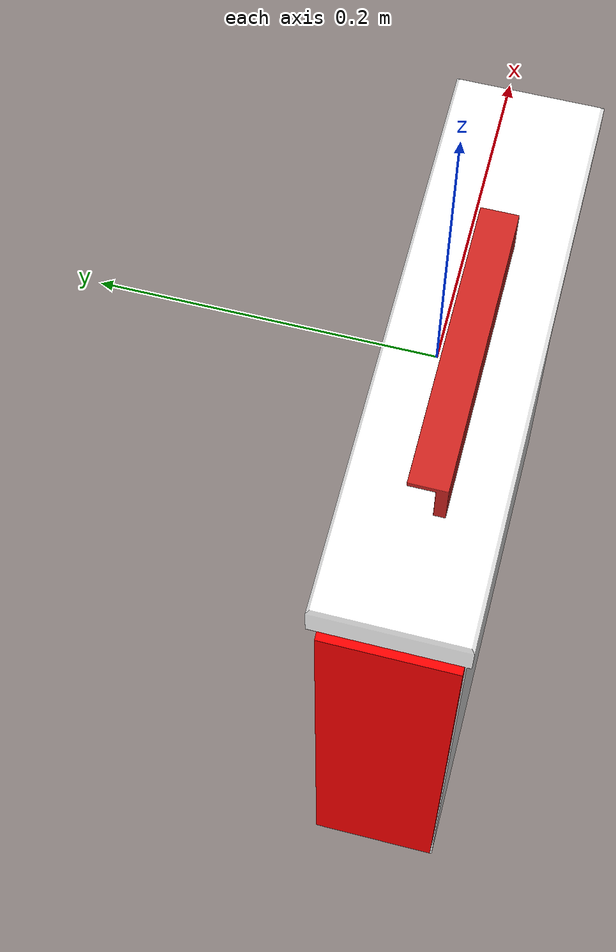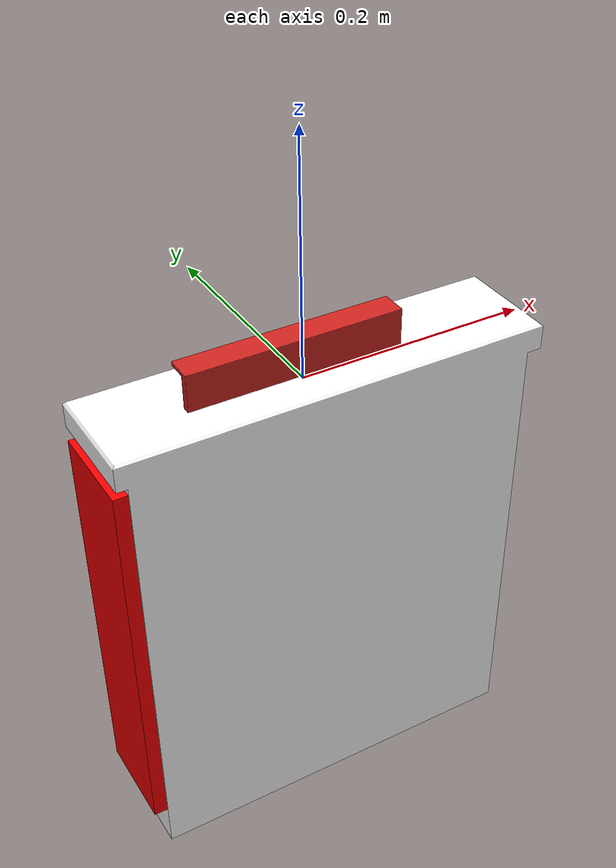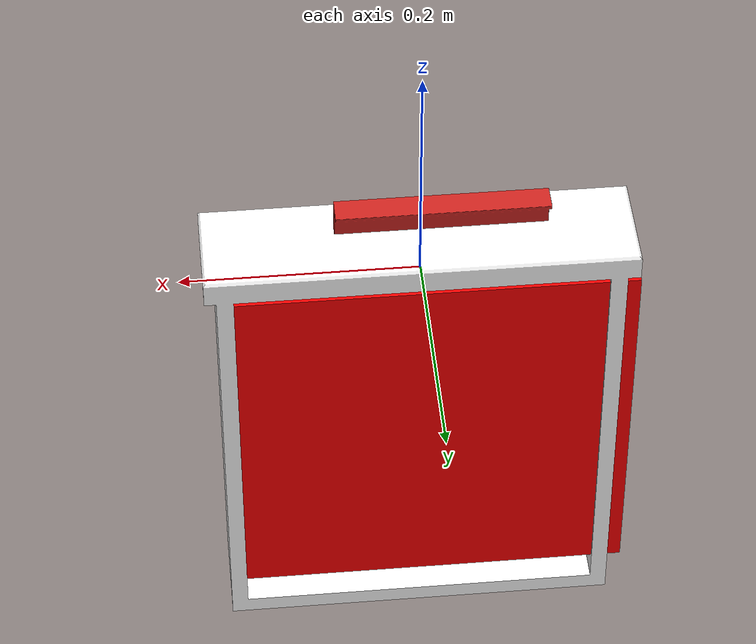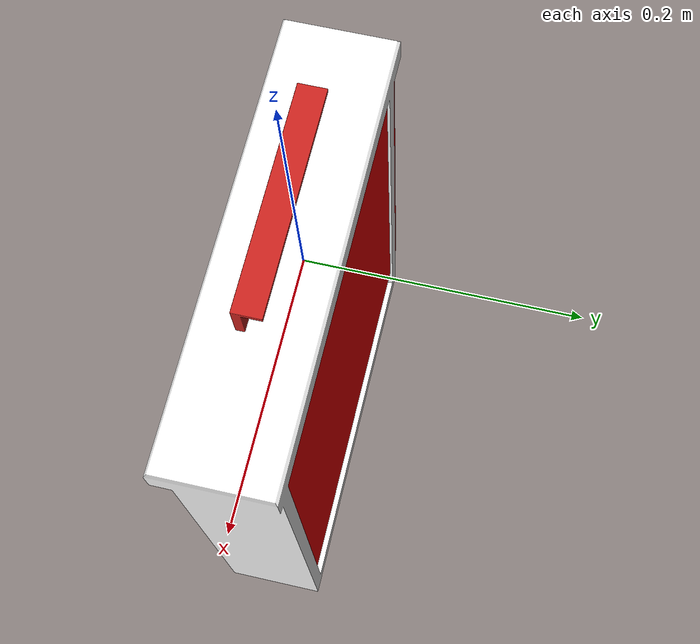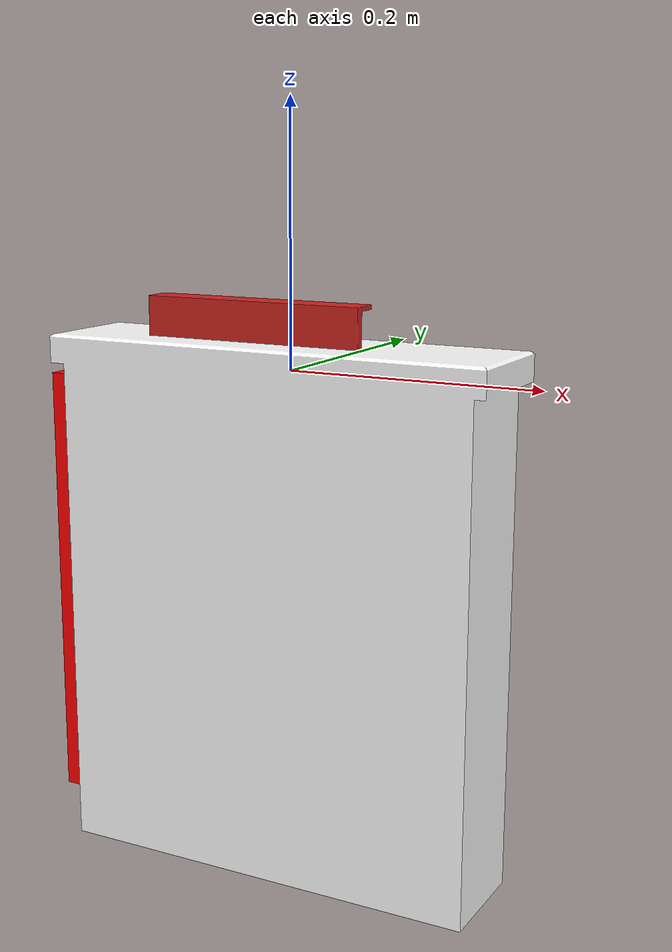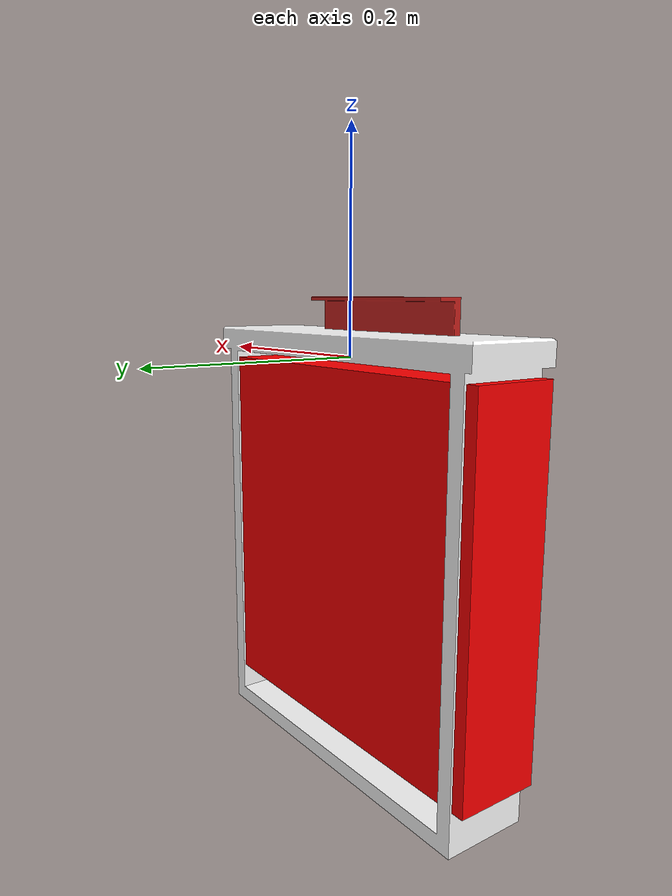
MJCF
<mujoco model="Drawer_8f754799">
  <compiler autolimits="true" boundmass="0.01" angle="radian"/>
  <default>
    <default class="/">
      <default class="__VISUAL_MJT__">
        <geom contype="0" conaffinity="0" group="0"/>
      </default>
      <default class="__STRUCTURAL_MJT__">
        <geom contype="8" conaffinity="15" group="4" friction="0.90000000000000002 0.90000000000000002 0.001" solref="0.025000000000000001 1" solimp="0.998 0.998 0.001"/>
      </default>
      <default class="__DYNAMIC_MJT__">
        <geom contype="1" conaffinity="15" group="4" friction="0.90000000000000002 0.90000000000000002 0.001" solref="0.025000000000000001 1" solimp="0.998 0.998 0.001"/>
      </default>
    </default>
  </default>
  <asset>
    <material name="material_WhiteWoodClean" class="/" specular="0.5" shininess="0.5" rgba="1 1 1 1"/>
    <mesh name="Drawer_8f754799_Mesh_01_61ff9686" class="/" file="Drawer_8f754799_Mesh_01_61ff9686/Drawer_8f754799_Mesh_01_61ff9686.obj" scale="1 1 1" inertia="legacy"/>
    <texture name="HammeredMetal_AlbedoTransparency_2" type="2d" file="HammeredMetal_AlbedoTransparency.png"/>
    <material name="material_HammeredMetal_AlbedoTransparency_2" class="/" texture="HammeredMetal_AlbedoTransparency_2" specular="0.5" shininess="0.5" rgba="1 0.93407709999999999 0.81617649999999997 1"/>
    <mesh name="Drawer_8f754799_handle_3_178mm_01_11b9f268" class="/" file="Drawer_8f754799_handle_3_178mm_01_11b9f268/Drawer_8f754799_handle_3_178mm_01_11b9f268.obj" scale="1 1 1" inertia="legacy"/>
  </asset>
  <worldbody>
    <body name="Drawer_8f754799">
      <body name="Drawer_8f754799_Mesh_01_61ff9686" pos="-0.019500004127621651 -0.024600028991699219 0.0010000485926866531" quat="1 0 0 0">
        <geom name="Drawer_8f754799_Mesh_01_61ff9686" class="__VISUAL_MJT__" type="mesh" material="material_WhiteWoodClean" mesh="Drawer_8f754799_Mesh_01_61ff9686"/>
        <joint name="Drawer_8f754799_joint" class="/" type="slide" pos="0.019500004127621651 0.024600028991699219 -0.0010000481270253658" axis="0 0 1" stiffness="0" range="0 0.26100000000000001" damping="0.10000000000000001" frictionloss="0"/>
        <site name="Drawer_8f754799_Mesh_01_61ff9686_Receptacle_0" class="/" type="box" rgba="1 0 0 1" size="0.17590720951557159 0.040375798940658569 0.17126330733299255" pos="0.014102946035563946 0.0092934966087341309 -0.17965176701545715" quat="0 1 0 0"/>
        <geom name="Drawer_8f754799_Mesh_01_61ff9686_PrimitiveCollider_0" class="__DYNAMIC_MJT__" type="box" size="0.17905448377132416 0.046968776732683182 0.01138788741081953" rgba="0 1 0 1" pos="0.0195000059902668 0.0093400478363037109 0.010400890372693539" quat="0 1 0 0"/>
        <geom name="Drawer_8f754799_Mesh_01_61ff9686_PrimitiveCollider_1" class="__DYNAMIC_MJT__" type="box" size="0.17905448377132416 0.044112864881753922 0.0073814410716295242" rgba="0 1 0 1" pos="0.019499991089105606 0.0069411396980285645 -0.36086231470108032" quat="0 1 0 0"/>
        <geom name="Drawer_8f754799_Mesh_01_61ff9686_PrimitiveCollider_2" class="__DYNAMIC_MJT__" type="box" size="0.19288802146911621 0.043673992156982422 0.0055124815553426743" rgba="0 1 0 1" pos="-0.15326370298862457 0.0073800086975097656 -0.17537355422973633" quat="0 0.70710678118654757 0 0.70710678118654757"/>
        <geom name="Drawer_8f754799_Mesh_01_61ff9686_PrimitiveCollider_3" class="__DYNAMIC_MJT__" type="box" size="0.19288811087608337 0.043673992156982422 0.0055124843493103981" rgba="0 1 0 1" pos="0.1919085830450058 0.0073800086975097656 -0.17537359893321991" quat="0 0.70710678118654757 0 0.70710678118654757"/>
        <geom name="Drawer_8f754799_Mesh_01_61ff9686_PrimitiveCollider_4" class="__DYNAMIC_MJT__" type="box" size="0.1928880512714386 0.17725589871406555 0.0031554084271192551" rgba="0 1 0 1" pos="0.018958371132612228 -0.034046649932861328 -0.17537358403205872" quat="-0.49999994039536055 0.49999999999999822 0.50000005960463589 0.49999999999999822"/>
        <body name="Drawer_8f754799_handle_3_178mm_01_11b9f268" pos="-1.3038516044616699e-08 0 0.019999982789158821" quat="1 0 0 0">
          <geom name="Drawer_8f754799_handle_3_178mm_01_11b9f268" class="__VISUAL_MJT__" type="mesh" material="material_HammeredMetal_AlbedoTransparency_2" mesh="Drawer_8f754799_handle_3_178mm_01_11b9f268"/>
          <geom name="Drawer_8f754799_handle_3_178mm_01_11b9f268_PrimitiveCollider_0" class="__DYNAMIC_MJT__" type="box" size="0.088752105832099915 0.0035549115855246782 0.016431532800197601" rgba="0 1 0 1" pos="1.941927507687069e-09 0 0.016290070489048958" quat="0 1 0 0"/>
          <geom name="Drawer_8f754799_handle_3_178mm_01_11b9f268_PrimitiveCollider_1" class="__DYNAMIC_MJT__" type="box" size="0.088752105832099915 0.0077598136849701405 0.0019227261655032635" rgba="0 1 0 1" pos="3.6715022133648745e-09 0.011284887790679932 0.030798796564340591" quat="0 1 0 0"/>
        </body>
      </body>
    </body>
  </worldbody>
  <contact>
    <exclude name="//unnamed_contact_0" body1="Drawer_8f754799_Mesh_01_61ff9686" body2="Drawer_8f754799_handle_3_178mm_01_11b9f268"/>
  </contact>
</mujoco>
